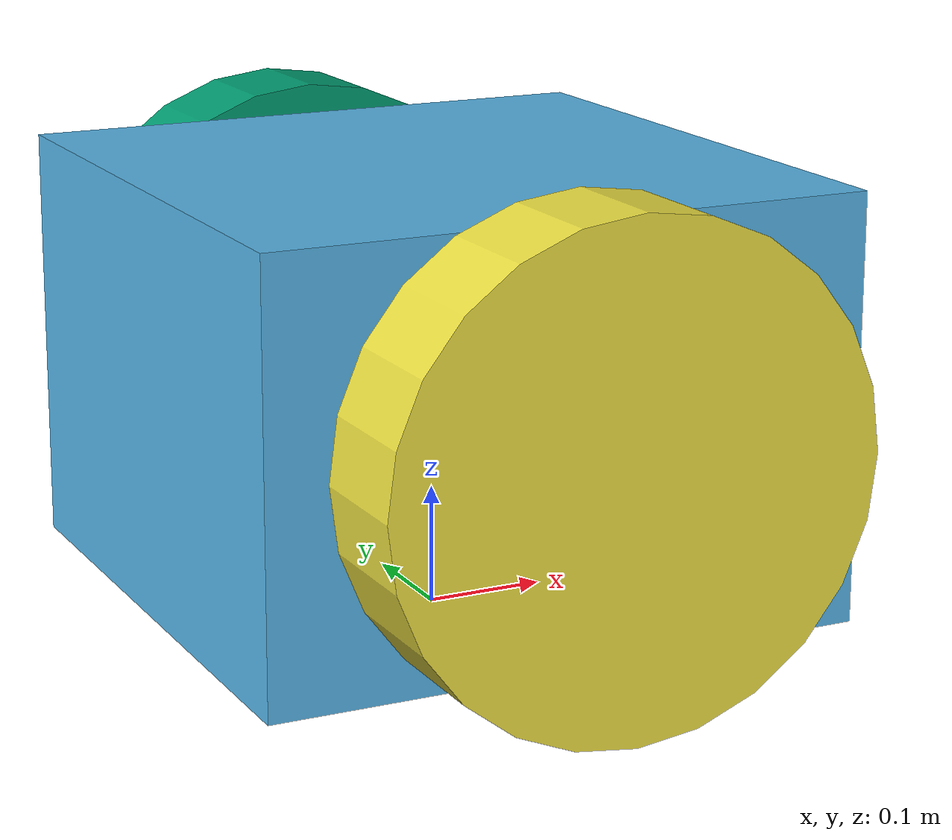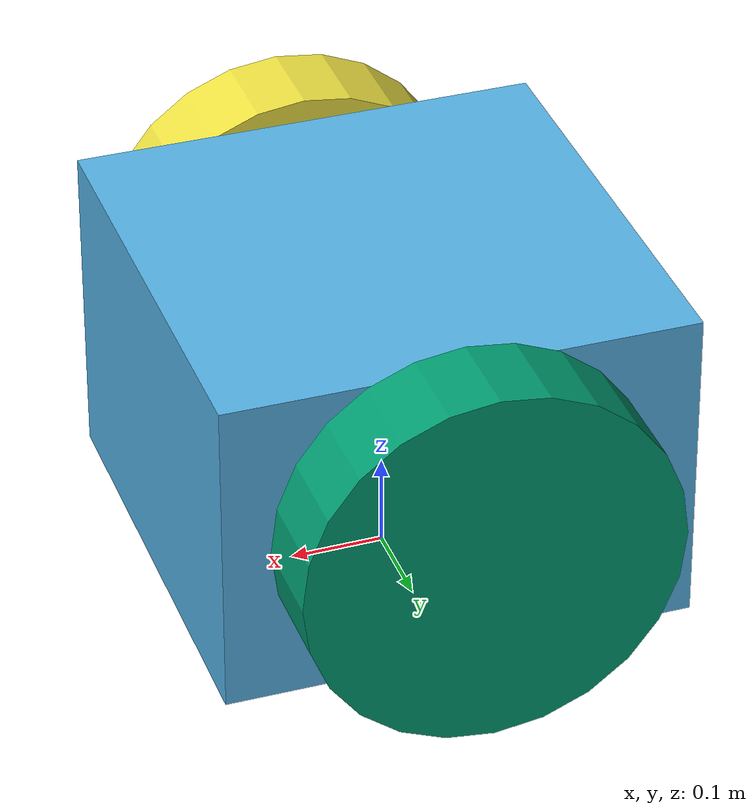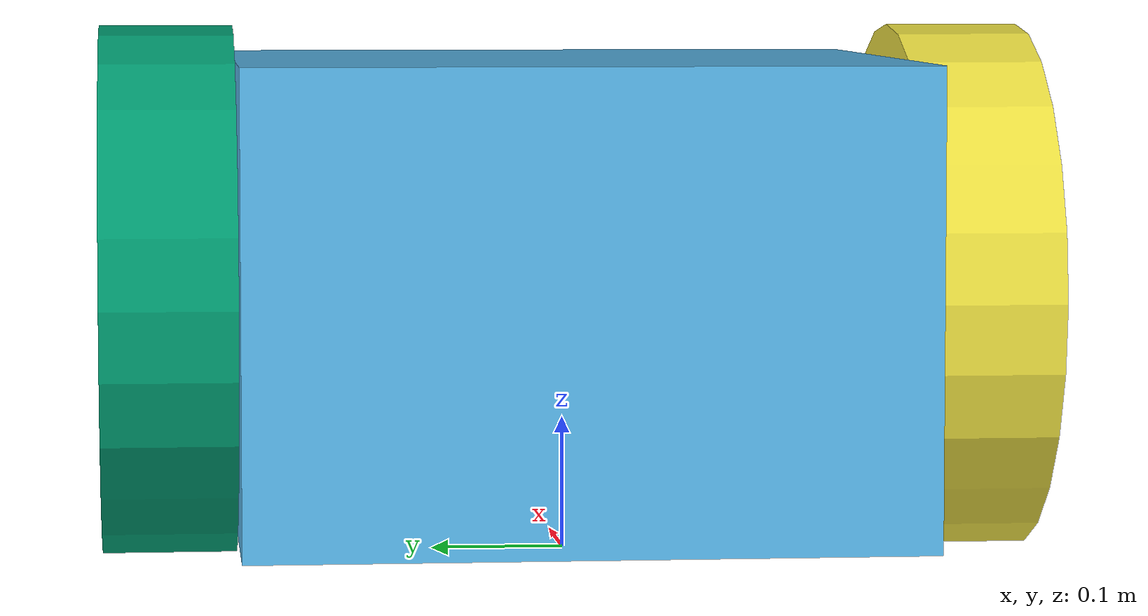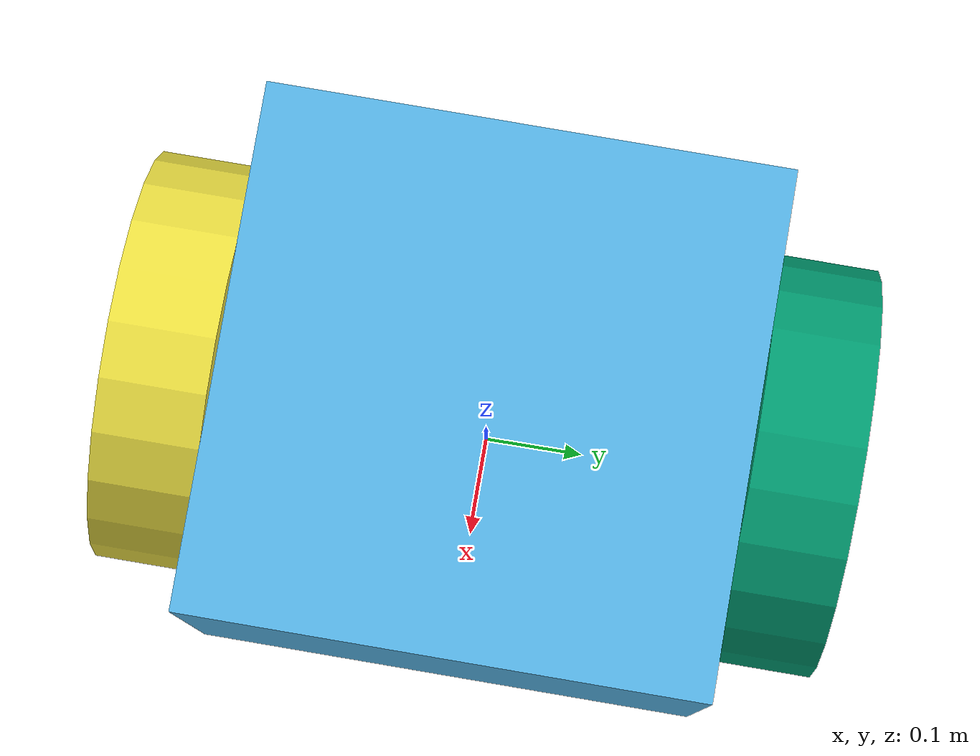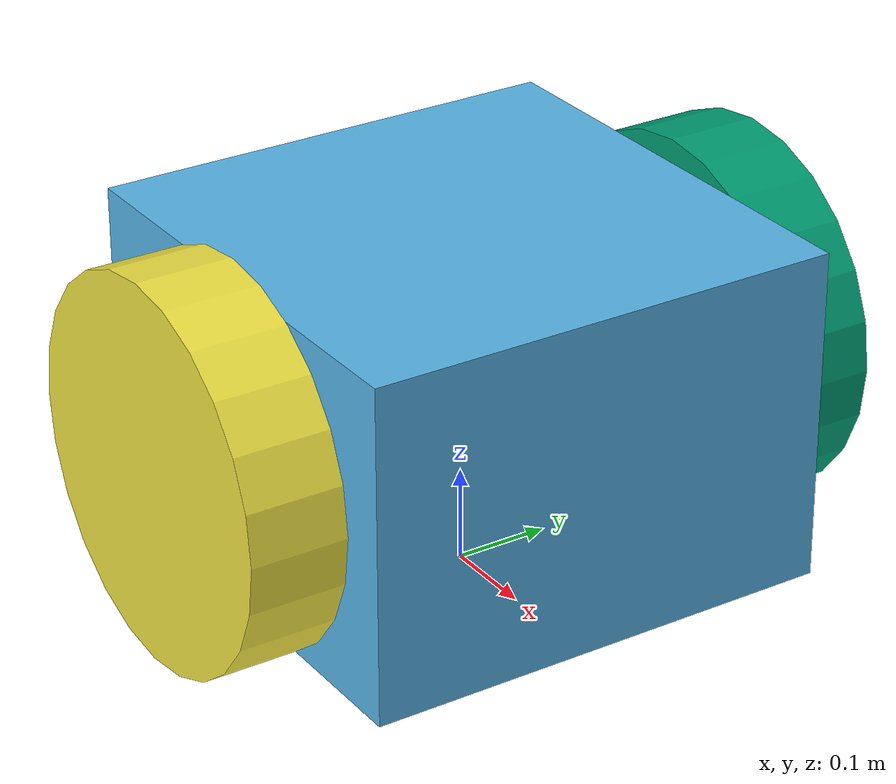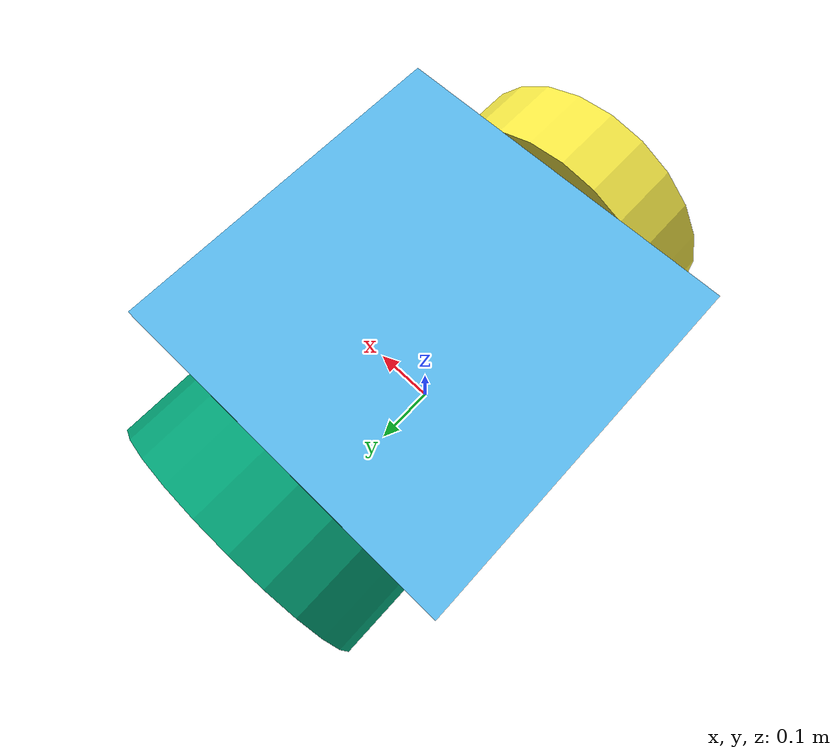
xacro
<robot name="jijin_wheel_robot" xmlns:xacro="http://www.ros.org/wiki/xacro">

  <xacro:include filename="$(find jijin_mobile_robot_description)/urdf/jijin_wheel_robot.urdf" />

  #add firection to wheel left
  <gazebo reference="wheel_left">
    <selfCollide>false</selfCollide>
    <turnGravityOff>false</turnGravityOff>
    <mu1 value="1.0"/>
    <mu2 value="1.0"/>
    <kp value="10000000.0"/>
    <kd value="1.0"/>
    <fdir1 value="1 0 0"/>
  </gazebo>
  #add firection to wheel right
  <gazebo reference="wheel_right">
    <selfCollide>false</selfCollide>
    <turnGravityOff>false</turnGravityOff>
    <mu1 value="1.0"/>
    <mu2 value="1.0"/>
    <kp value="10000000.0"/>
    <kd value="1.0"/>
    <fdir1 value="1 0 0"/>
  </gazebo>

  #differential drive controller
  <gazebo>
    <plugin name="differential_drive_controller"
      filename="libgazebo_ros_diff_drive.so">
      <commandTopic>cmd_vel</commandTopic>
      <odometryTopic>odom</odometryTopic>
      <odometryFrame>odom</odometryFrame>
      <odometrySource>world</odometrySource>
      <robotBaseFrame>base_link</robotBaseFrame>
      <publishOdomTF>true</publishOdomTF>
      <publishWheelTF>true</publishWheelTF>
      <publishTf>1</publishTf>
      <publishWheelJointState>false</publishWheelJointState>
      <legacyMode>false</legacyMode>
      <updateRate>30</updateRate>
      <leftJoint>wheel_left_joint</leftJoint>
      <rightJoint>wheel_right_joint</rightJoint>
      <wheelSeparation>0.6</wheelSeparation>
      <wheelDiameter>0.2</wheelDiameter>
      <wheelAcceleration>1.8</wheelAcceleration>
      <wheelTorque>10</wheelTorque>
      <rosDebugLevel>Debug</rosDebugLevel>
    </plugin>
  </gazebo>

  # add a laser_link and a laser
  <link name="laser_link"/>
  <joint name="laser_joint" type="fixed">
    <parent link="base_link"/>
    <child  link="laser_link"/>
    <origin xyz="0 0 0.6" rpy="0 0 0" />
  </joint>
  <gazebo reference="laser_link">
    <sensor type="ray" name="head_hokuyo_sensor">
      <pose>0 0 0 0 0 0</pose>
      <visualize>true</visualize>
      <update_rate>20</update_rate>
      <ray>
        <scan>
          <horizontal>
            <samples>1280</samples>
            <resolution>1</resolution>
            <min_angle>-2.72</min_angle>
            <max_angle>2.72</max_angle>
          </horizontal>
        </scan>
        <range>
          <min>1.0</min>
          <max>30.0</max>
          <resolution>0.01</resolution>
        </range>
        <noise>
          <type>gaussian</type>
          <mean>0.0</mean>
          <stddev>0.0001</stddev>
        </noise>
      </ray>
      <plugin name="gazebo_ros_lidar_controller" filename="libgazebo_ros_laser.so">
        <topicName>scan</topicName>
        <frameName>laser_link</frameName>
      </plugin>
    </sensor>
  </gazebo>

</robot>

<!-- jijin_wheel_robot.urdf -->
<robot name="jijin_wheel_robot">

  #define a base_link on the ground
  <link name="base_link"/>

  #add a robot body
  <link name="body_link">
    <visual>
      <geometry>
        <box size="0.5 0.5 0.35"/>
      </geometry>
      <origin xyz="0 0 0" rpy="0 0 0"/>
    </visual>
    <collision>
      <geometry>
        <box size="0.5 0.5 0.35"/>
      </geometry>
      <origin xyz="0 0 0" rpy="0 0 0"/>
    </collision>
    <inertial>
       <origin xyz="0 0 0" rpy="0 0 0"/>
       <mass value="5"/>
       <inertia ixx="1"  ixy="0"  ixz="0" iyy="1" iyz="0" izz="1" />
    </inertial>
  </link>
  <joint name="body_joint" type="fixed">
    <parent link="base_link"/>
    <child  link="body_link"/>
    <origin xyz="0 0 0.2" rpy="0 0 0" />
  </joint>

  #add left wheels
  <link name="wheel_left">
    <visual>
      <geometry>
        <cylinder radius="0.2" length="0.1"/>
      </geometry>
      <origin xyz="0 0 0" rpy="1.57 0 0"/>
    </visual>
    <collision>
      <geometry>
        <cylinder radius="0.2" length="0.1"/>
      </geometry>
      <origin xyz="0 0 0" rpy="1.57 0 0"/>
    </collision>
    <inertial>
       <origin xyz="0 0 0" rpy="1.57 0 0"/>
       <mass value="1"/>
       <inertia ixx="1"  ixy="0"  ixz="0" iyy="1" iyz="0" izz="1" />
    </inertial>
  </link>
  <joint name="wheel_left_joint" type="continuous">
    <parent link="body_link"/>
    <child  link="wheel_left"/>
    <origin xyz="0 0.3 0" rpy="0 0 0" />
    <axis xyz="0 1 0"/>
    <limit effort="100" velocity="100"/>
    <joint_properties damping="0.0" friction="0.0"/>
  </joint>

  #add right wheels
  <link name="wheel_right">
    <visual>
      <geometry>
        <cylinder radius="0.2" length="0.1"/>
      </geometry>
      <origin xyz="0 0 0" rpy="1.57 0 0"/>
    </visual>
    <collision>
      <geometry>
        <cylinder radius="0.2" length="0.1"/>
      </geometry>
      <origin xyz="0 0 0" rpy="1.57 0 0"/>
    </collision>
    <inertial>
       <origin xyz="0 0 0" rpy="1.57 0 0"/>
       <mass value="1"/>
       <inertia ixx="1"  ixy="0"  ixz="0" iyy="1" iyz="0" izz="1" />
    </inertial>
  </link>
  <joint name="wheel_right_joint" type="continuous">
    <parent link="body_link"/>
    <child  link="wheel_right"/>
    <origin xyz="0 -0.3 0" rpy="0 0 0" />
    <axis xyz="0 1 0"/>
    <limit effort="100" velocity="100"/>
    <joint_properties damping="0.0" friction="0.0"/>
  </joint>

</robot>
